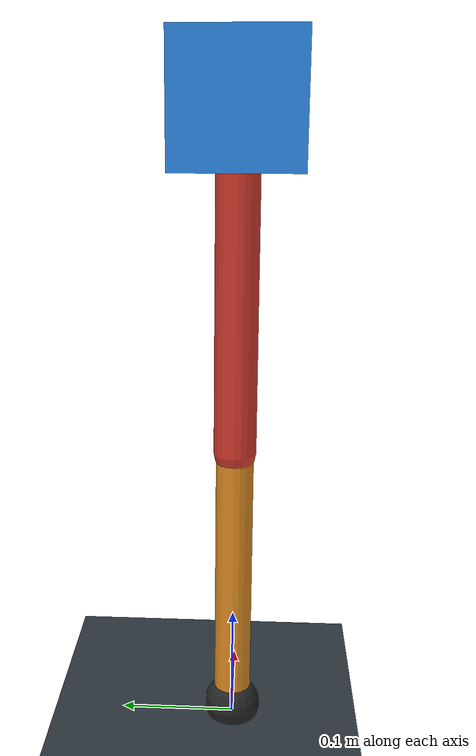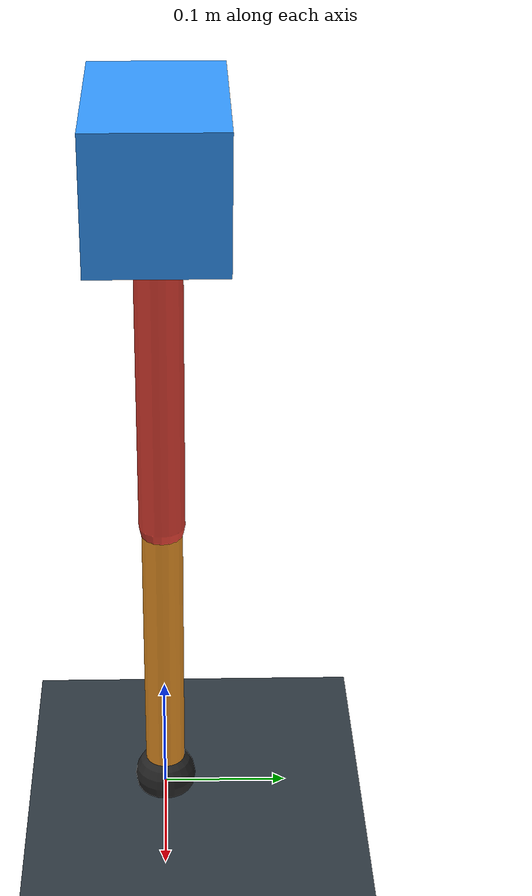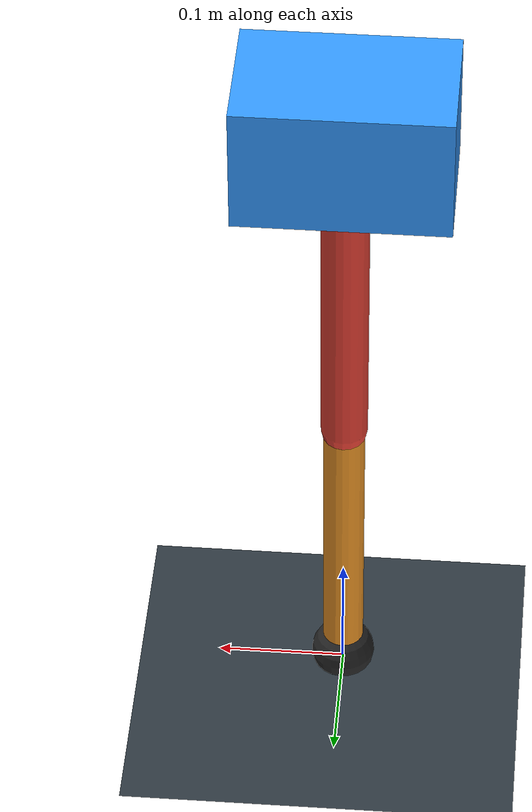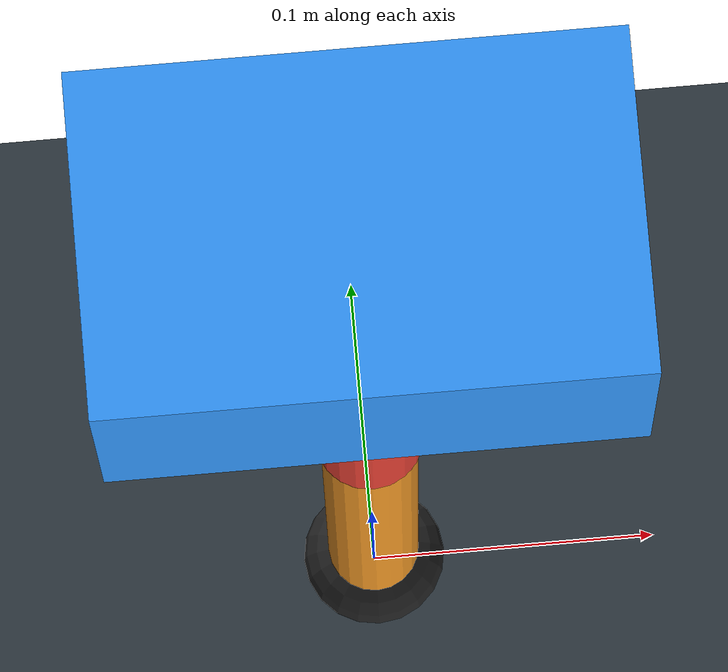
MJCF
<mujoco model="single_axis_two_bar">
  <compiler angle="radian" inertiafromgeom="true"/>
  <option timestep="0.001" integrator="implicitfast" gravity="0 0 -9.81"/>
  <default>
    <joint damping="0.08"/>
    <geom friction="1.2 0.01 0.0001" condim="3"/>
  </default>
  <worldbody>
    <geom name="floor" type="plane" size="5 5 0.1" rgba="0.18 0.22 0.25 1"/>
    <body name="carriage" pos="0 0 0.5418538363980194">
      <joint name="pole_slide" type="slide" axis="0 0 1"/>
      <geom name="payload" type="box" size="0.08 0.05 0.05" mass="3.4952116228806323" rgba="0.2 0.6 1 1"/>
      <body name="thigh" pos="0 0 0">
        <joint name="hip" type="hinge" axis="0 1 0"/>
        <geom name="thigh_link" type="capsule" fromto="0 0 0 0 0 -0.28930008207923863" size="0.018" mass="0.20613013124476606" rgba="0.9 0.25 0.2 1"/>
        <body name="shank" pos="0 0 -0.28930008207923863">
          <joint name="knee" type="hinge" axis="0 1 0"/>
          <geom name="shank_link" type="capsule" fromto="0 0 0 0 0 -0.24353892451665776" size="0.016" mass="0.17352470180107993" rgba="0.95 0.6 0.15 1"/>
          <geom name="foot" type="sphere" pos="0 0 -0.24353892451665776" size="0.025" mass="0.03" rgba="0.15 0.15 0.15 1"/>
          <site name="toe" pos="0 0 -0.24353892451665776" size="0.008"/>
        </body>
      </body>
    </body>
  </worldbody>
  <actuator>
    <motor name="hip_motor" joint="hip" ctrlrange="-28.525518178059375 28.525518178059375"/>
    <motor name="knee_motor" joint="knee" ctrlrange="-163.71027997651836 163.71027997651836"/>
  </actuator>
</mujoco>
